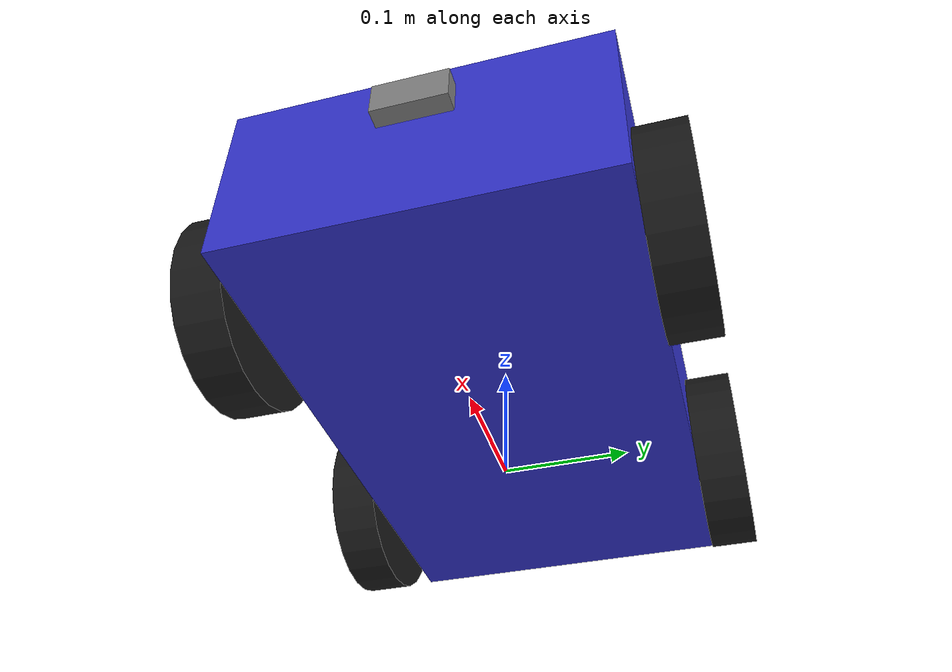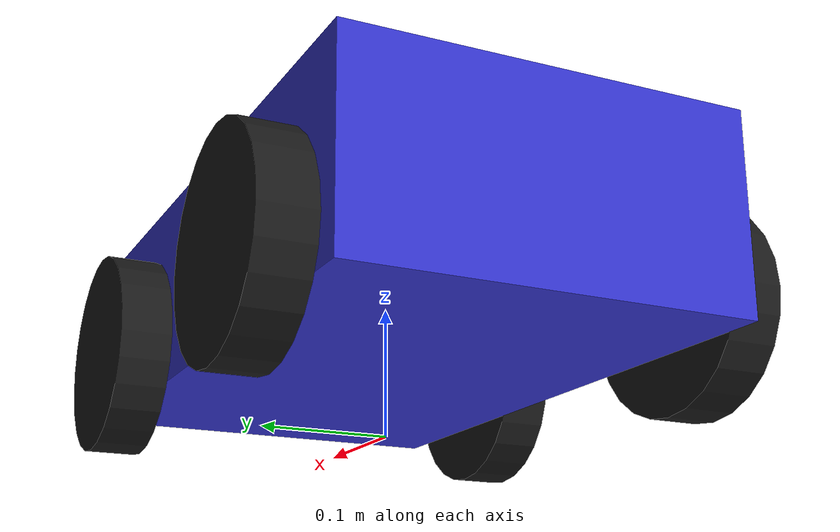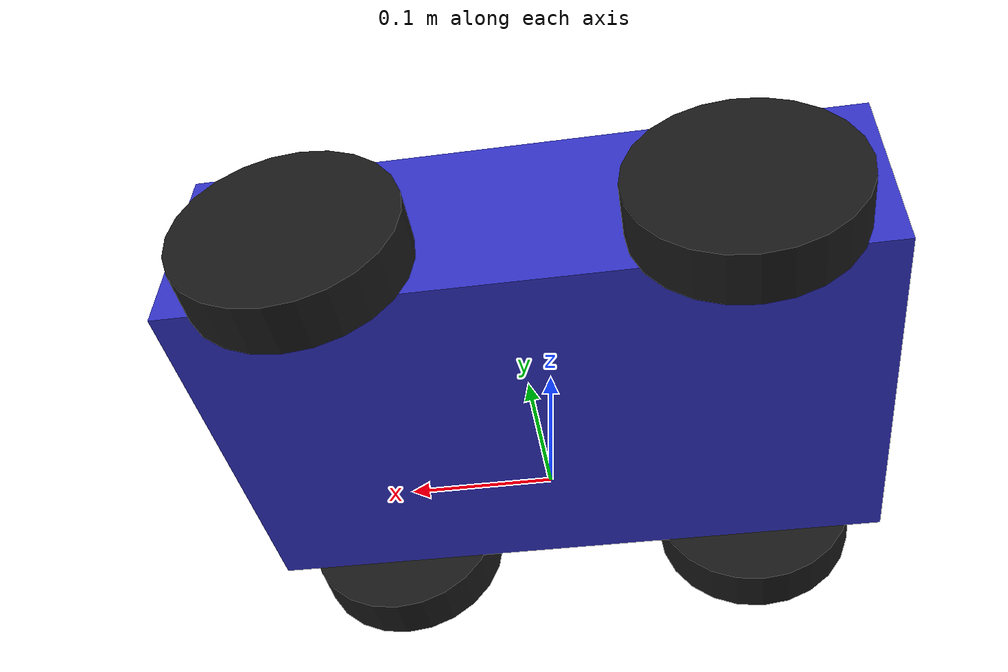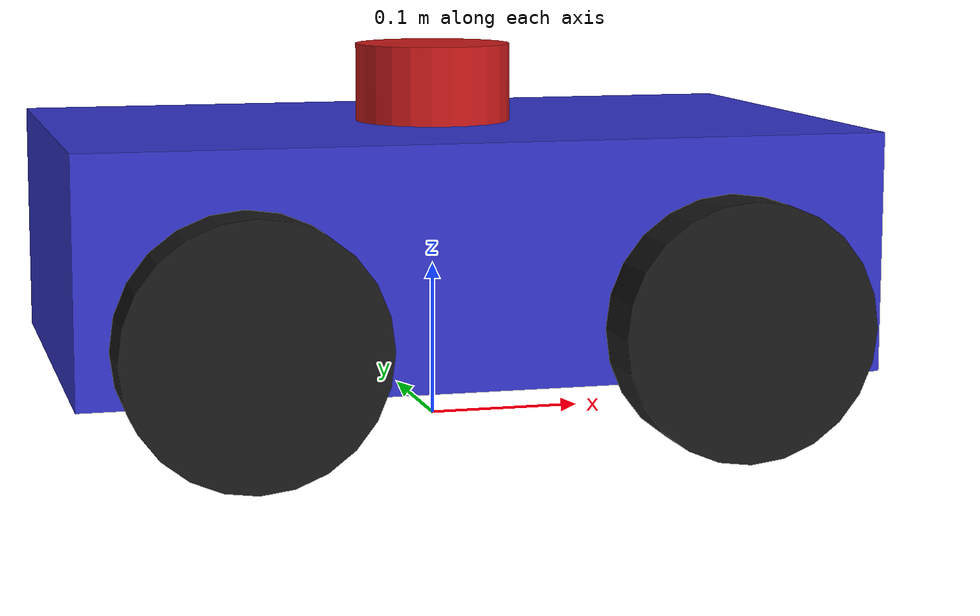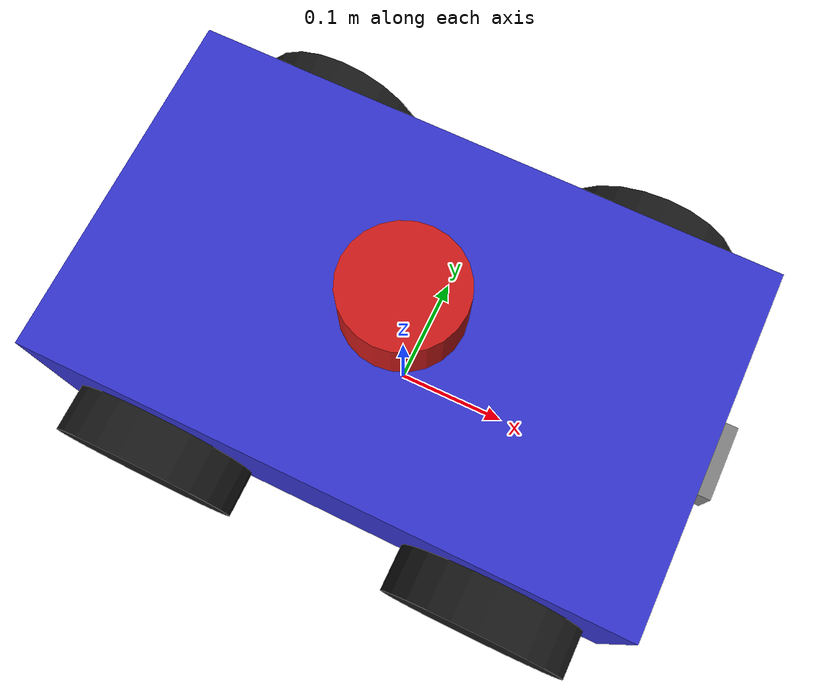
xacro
<?xml version="1.0"?>
<robot xmlns:xacro="http://www.ros.org/wiki/xacro" name="delivery_bot">

  <!-- ==================== PROPERTIES ==================== -->
  <xacro:property name="chassis_length" value="0.5"/>
  <xacro:property name="chassis_width" value="0.3"/>
  <xacro:property name="chassis_height" value="0.15"/>
  <xacro:property name="chassis_mass" value="10.0"/>

  <xacro:property name="wheel_radius" value="0.08"/>
  <xacro:property name="wheel_width" value="0.04"/>
  <xacro:property name="wheel_mass" value="0.5"/>

  <xacro:property name="lidar_size" value="0.05"/>
  <xacro:property name="camera_size" value="0.03"/>

  <!-- Wheel positions -->
  <xacro:property name="wheel_x_offset" value="0.15"/>
  <xacro:property name="wheel_y_offset" value="0.17"/>
  <xacro:property name="wheel_z_offset" value="-0.04"/>

  <!-- ==================== MATERIALS ==================== -->
  <material name="blue">
    <color rgba="0.2 0.2 0.8 1.0"/>
  </material>
  <material name="black">
    <color rgba="0.1 0.1 0.1 1.0"/>
  </material>
  <material name="red">
    <color rgba="0.8 0.1 0.1 1.0"/>
  </material>
  <material name="grey">
    <color rgba="0.5 0.5 0.5 1.0"/>
  </material>

  <!-- ==================== INERTIA MACROS ==================== -->
  <xacro:macro name="box_inertia" params="m x y z">
    <inertia ixx="${(m/12)*(y*y+z*z)}" ixy="0" ixz="0"
             iyy="${(m/12)*(x*x+z*z)}" iyz="0"
             izz="${(m/12)*(x*x+y*y)}"/>
  </xacro:macro>

  <xacro:macro name="cylinder_inertia" params="m r h">
    <inertia ixx="${(m/12)*(3*r*r+h*h)}" ixy="0" ixz="0"
             iyy="${(m/12)*(3*r*r+h*h)}" iyz="0"
             izz="${(m/2)*r*r}"/>
  </xacro:macro>

  <!-- ==================== WHEEL MACRO ==================== -->
  <xacro:macro name="wheel" params="prefix x_reflect y_reflect">
    <link name="${prefix}_wheel_link">
      <visual>
        <geometry>
          <cylinder radius="${wheel_radius}" length="${wheel_width}"/>
        </geometry>
        <material name="black"/>
      </visual>
      <collision>
        <geometry>
          <cylinder radius="${wheel_radius}" length="${wheel_width}"/>
        </geometry>
      </collision>
      <inertial>
        <mass value="${wheel_mass}"/>
        <xacro:cylinder_inertia m="${wheel_mass}" r="${wheel_radius}" h="${wheel_width}"/>
      </inertial>
    </link>

    <joint name="${prefix}_wheel_joint" type="continuous">
      <parent link="base_link"/>
      <child link="${prefix}_wheel_link"/>
      <origin xyz="${x_reflect * wheel_x_offset} ${y_reflect * wheel_y_offset} ${wheel_z_offset}"
              rpy="${-pi/2} 0 0"/>
      <axis xyz="0 0 1"/>
      <dynamics damping="0.2" friction="0.3"/>
    </joint>
  </xacro:macro>

  <!-- ==================== BASE LINK ==================== -->
  <link name="base_footprint"/>

  <link name="base_link">
    <visual>
      <geometry>
        <box size="${chassis_length} ${chassis_width} ${chassis_height}"/>
      </geometry>
      <material name="blue"/>
    </visual>
    <collision>
      <geometry>
        <box size="${chassis_length} ${chassis_width} ${chassis_height}"/>
      </geometry>
    </collision>
    <inertial>
      <mass value="${chassis_mass}"/>
      <xacro:box_inertia m="${chassis_mass}" x="${chassis_length}" y="${chassis_width}" z="${chassis_height}"/>
    </inertial>
  </link>

  <joint name="base_footprint_joint" type="fixed">
    <parent link="base_footprint"/>
    <child link="base_link"/>
    <origin xyz="0 0 ${wheel_radius - wheel_z_offset}" rpy="0 0 0"/>
  </joint>

  <!-- ==================== WHEELS ==================== -->
  <xacro:wheel prefix="front_left" x_reflect="1" y_reflect="1"/>
  <xacro:wheel prefix="front_right" x_reflect="1" y_reflect="-1"/>
  <xacro:wheel prefix="rear_left" x_reflect="-1" y_reflect="1"/>
  <xacro:wheel prefix="rear_right" x_reflect="-1" y_reflect="-1"/>

  <!-- ==================== LIDAR SENSOR ==================== -->
  <link name="lidar_link">
    <visual>
      <geometry>
        <cylinder radius="${lidar_size}" length="${lidar_size}"/>
      </geometry>
      <material name="red"/>
    </visual>
    <collision>
      <geometry>
        <cylinder radius="${lidar_size}" length="${lidar_size}"/>
      </geometry>
    </collision>
    <inertial>
      <mass value="0.1"/>
      <xacro:cylinder_inertia m="0.1" r="${lidar_size}" h="${lidar_size}"/>
    </inertial>
  </link>

  <joint name="lidar_joint" type="fixed">
    <parent link="base_link"/>
    <child link="lidar_link"/>
    <origin xyz="0 0 ${chassis_height/2 + lidar_size/2}" rpy="0 0 0"/>
  </joint>

  <!-- ==================== CAMERA SENSOR ==================== -->
  <link name="camera_link">
    <visual>
      <geometry>
        <box size="${camera_size} ${camera_size*2} ${camera_size}"/>
      </geometry>
      <material name="grey"/>
    </visual>
    <collision>
      <geometry>
        <box size="${camera_size} ${camera_size*2} ${camera_size}"/>
      </geometry>
    </collision>
    <inertial>
      <mass value="0.05"/>
      <xacro:box_inertia m="0.05" x="${camera_size}" y="${camera_size*2}" z="${camera_size}"/>
    </inertial>
  </link>

  <joint name="camera_joint" type="fixed">
    <parent link="base_link"/>
    <child link="camera_link"/>
    <origin xyz="${chassis_length/2} 0 ${chassis_height/4}" rpy="0 0 0"/>
  </joint>

  <link name="camera_optical_link"/>
  <joint name="camera_optical_joint" type="fixed">
    <parent link="camera_link"/>
    <child link="camera_optical_link"/>
    <origin xyz="0 0 0" rpy="${-pi/2} 0 ${-pi/2}"/>
  </joint>

  <!-- ==================== GAZEBO COLORS ==================== -->
  <gazebo reference="base_link">
    <material>Gazebo/Blue</material>
  </gazebo>
  <gazebo reference="front_left_wheel_link">
    <material>Gazebo/Black</material>
  </gazebo>
  <gazebo reference="front_right_wheel_link">
    <material>Gazebo/Black</material>
  </gazebo>
  <gazebo reference="rear_left_wheel_link">
    <material>Gazebo/Black</material>
  </gazebo>
  <gazebo reference="rear_right_wheel_link">
    <material>Gazebo/Black</material>
  </gazebo>
  <gazebo reference="lidar_link">
    <material>Gazebo/Red</material>
  </gazebo>
  <gazebo reference="camera_link">
    <material>Gazebo/Grey</material>
  </gazebo>

  <!-- ==================== GAZEBO DIFFERENTIAL DRIVE PLUGIN ==================== -->
  <gazebo>
    <plugin filename="gz-sim-diff-drive-system" name="gz::sim::systems::DiffDrive">
      <left_joint>front_left_wheel_joint</left_joint>
      <left_joint>rear_left_wheel_joint</left_joint>
      <right_joint>front_right_wheel_joint</right_joint>
      <right_joint>rear_right_wheel_joint</right_joint>
      <wheel_separation>${wheel_y_offset * 2}</wheel_separation>
      <wheel_radius>${wheel_radius}</wheel_radius>
      <odom_publish_frequency>50</odom_publish_frequency>
      <topic>cmd_vel</topic>
      <odom_topic>odom</odom_topic>
      <tf_topic>tf</tf_topic>
      <frame_id>odom</frame_id>
      <child_frame_id>base_footprint</child_frame_id>
    </plugin>
  </gazebo>

  <!-- ==================== GAZEBO JOINT STATE PUBLISHER ==================== -->
  <gazebo>
    <plugin filename="gz-sim-joint-state-publisher-system" name="gz::sim::systems::JointStatePublisher">
      <joint_name>front_left_wheel_joint</joint_name>
      <joint_name>front_right_wheel_joint</joint_name>
      <joint_name>rear_left_wheel_joint</joint_name>
      <joint_name>rear_right_wheel_joint</joint_name>
    </plugin>
  </gazebo>

  <!-- ==================== LIDAR SENSOR PLUGIN ==================== -->
  <gazebo reference="lidar_link">
    <sensor name="lidar" type="gpu_lidar">
      <always_on>true</always_on>
      <update_rate>10</update_rate>
      <visualize>true</visualize>
      <topic>scan</topic>
      <lidar>
        <scan>
          <horizontal>
            <samples>360</samples>
            <resolution>1</resolution>
            <min_angle>-3.14159</min_angle>
            <max_angle>3.14159</max_angle>
          </horizontal>
        </scan>
        <range>
          <min>0.1</min>
          <max>10.0</max>
          <resolution>0.01</resolution>
        </range>
        <noise>
          <type>gaussian</type>
          <mean>0.0</mean>
          <stddev>0.01</stddev>
        </noise>
      </lidar>
    </sensor>
  </gazebo>

  <!-- ==================== CAMERA SENSOR PLUGIN ==================== -->
  <gazebo reference="camera_link">
    <sensor name="camera" type="camera">
      <always_on>true</always_on>
      <update_rate>30</update_rate>
      <visualize>true</visualize>
      <topic>camera</topic>
      <camera>
        <horizontal_fov>1.3962634</horizontal_fov>
        <image>
          <width>640</width>
          <height>480</height>
          <format>R8G8B8</format>
        </image>
        <clip>
          <near>0.02</near>
          <far>100</far>
        </clip>
        <noise>
          <type>gaussian</type>
          <mean>0.0</mean>
          <stddev>0.007</stddev>
        </noise>
      </camera>
    </sensor>
  </gazebo>

</robot>
